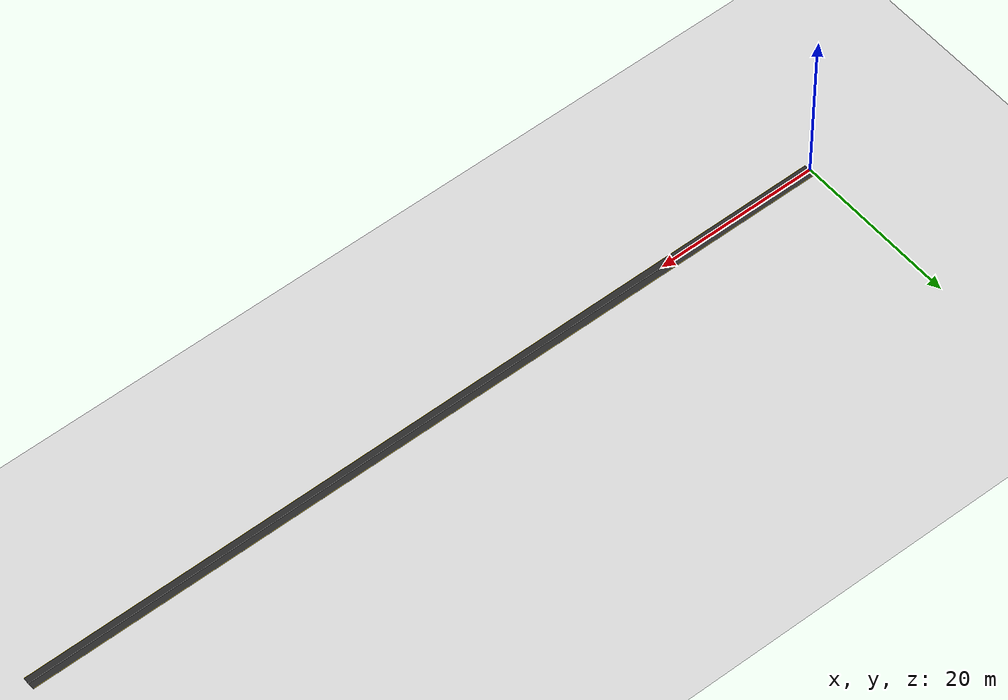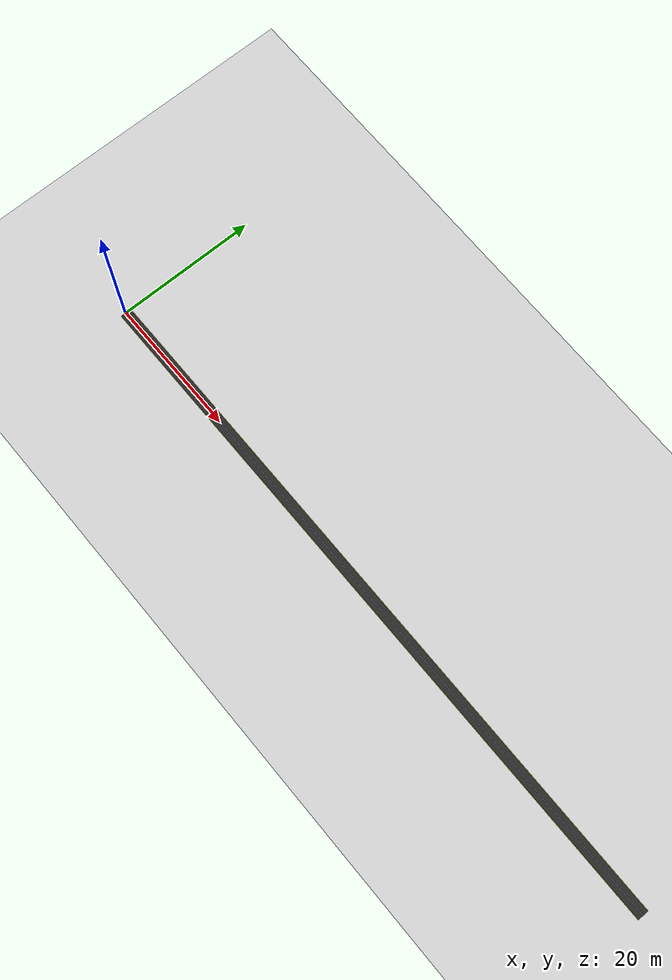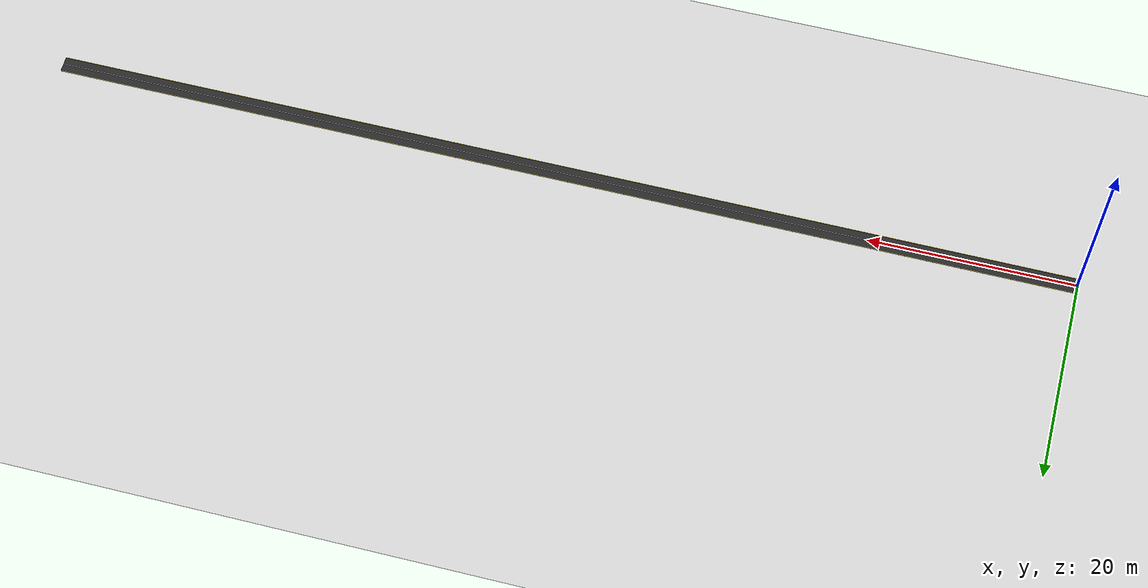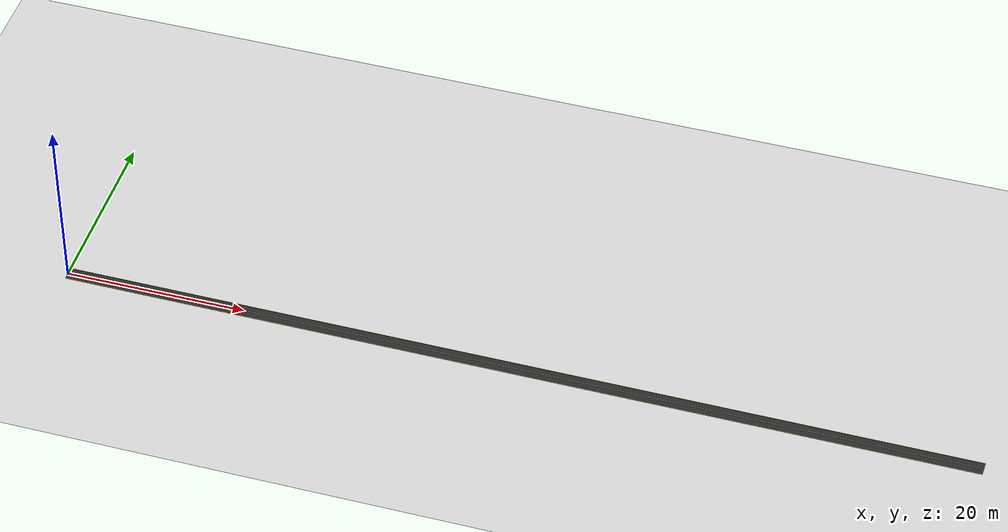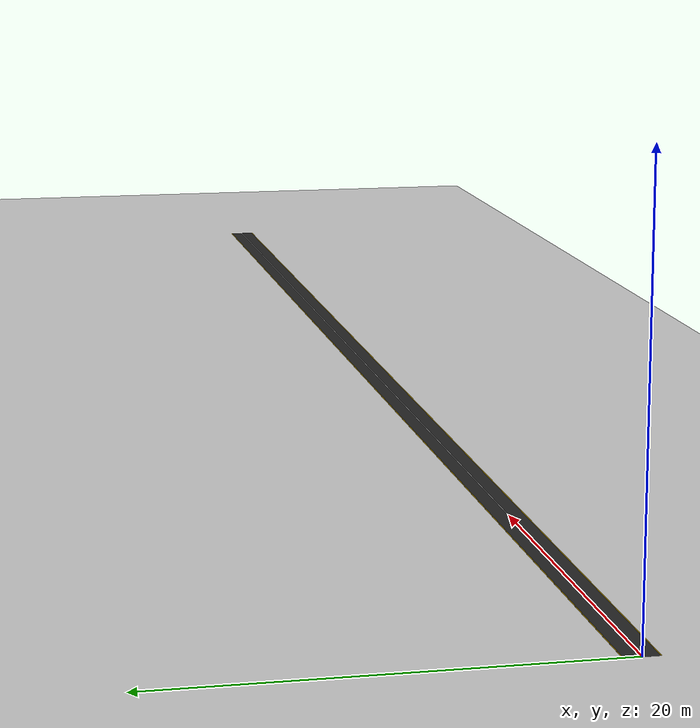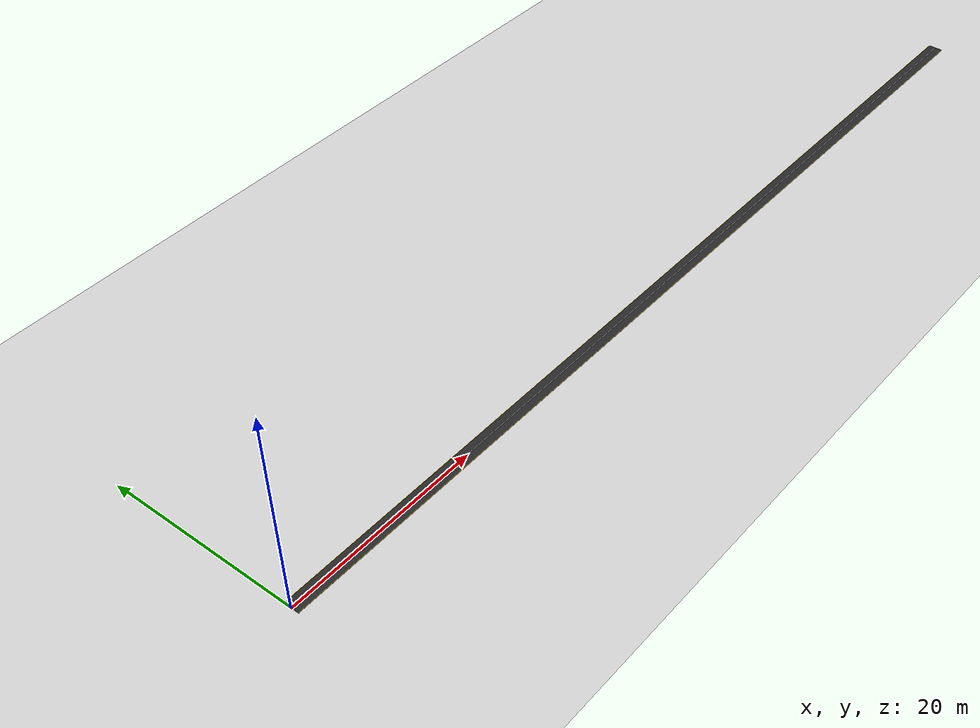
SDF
<?xml version="1.0" ?>
<sdf version="1.8">
  <world name="lane_keep_world">

    <physics name="1ms" type="ignored">
      <max_step_size>0.001</max_step_size>
      <real_time_factor>1.0</real_time_factor>
    </physics>
    <plugin filename="gz-sim-physics-system" name="gz::sim::systems::Physics"/>
    <plugin filename="gz-sim-user-commands-system" name="gz::sim::systems::UserCommands"/>
    <plugin filename="gz-sim-scene-broadcaster-system" name="gz::sim::systems::SceneBroadcaster"/>
    <plugin filename="gz-sim-sensors-system" name="gz::sim::systems::Sensors">
      <render_engine>ogre2</render_engine>
    </plugin>

    <light type="directional" name="sun">
      <cast_shadows>true</cast_shadows>
      <pose>0 0 10 0 0 0</pose>
      <diffuse>1.0 1.0 1.0 1</diffuse>
      <specular>0.5 0.5 0.5 1</specular>
      <direction>-0.5 0.1 -0.9</direction>
    </light>

    <model name="ground_plane">
      <static>true</static>
      <link name="link">
        <collision name="collision">
          <geometry>
            <plane>
              <normal>0 0 1</normal>
              <size>100 100</size>
            </plane>
          </geometry>
        </collision>
        <visual name="visual">
          <geometry>
            <plane>
              <normal>0 0 1</normal>
              <size>100 100</size>
            </plane>
          </geometry>
          <material>
            <ambient>0.8 0.8 0.8 1</ambient>
            <diffuse>0.8 0.8 0.8 1</diffuse>
            <specular>0.8 0.8 0.8 1</specular>
          </material>
        </visual>
      </link>
    </model>

    <model name="custom_road">
      <static>true</static>

      <!-- Asfalto -->
      <link name="asphalt">
        <pose>50 0 0.01 0 0 0</pose>
        <visual name="visual">
          <geometry><box><size>100.0 1.6 0.001</size></box></geometry>
          <material>
            <ambient>0.15 0.15 0.15 1</ambient>
            <diffuse>0.15 0.15 0.15 1</diffuse>
          </material>
        </visual>
      </link>

      <!-- left line -->
      <link name="left_line">
        <pose>50 0.78 0.015 0 0 0</pose>
        <visual name="visual">
          <geometry><box><size>100.0 0.04 0.001</size></box></geometry>
          <material>
            <ambient>1.0 0.8 0.0 1</ambient>
            <diffuse>1.0 0.8 0.0 1</diffuse>
          </material>
        </visual>
      </link>

      <!-- right line -->
      <link name="right_line">
        <pose>50 -0.78 0.015 0 0 0</pose>
        <visual name="visual">
          <geometry><box><size>100.0 0.04 0.001</size></box></geometry>
          <material>
            <ambient>1.0 0.8 0.0 1</ambient>
            <diffuse>1.0 0.8 0.0 1</diffuse>
          </material>
        </visual>
      </link>

      <!-- center line -->
      <link name="center_line">
        <pose>50 0 0.015 0 0 0</pose>
        <visual name="visual">
          <geometry><box><size>100.0 0.04 0.001</size></box></geometry>
          <material>
            <ambient>1 1 1 1</ambient>
            <diffuse>1 1 1 1</diffuse>
          </material>
        </visual>
      </link>

    </model>
  </world>
</sdf>
